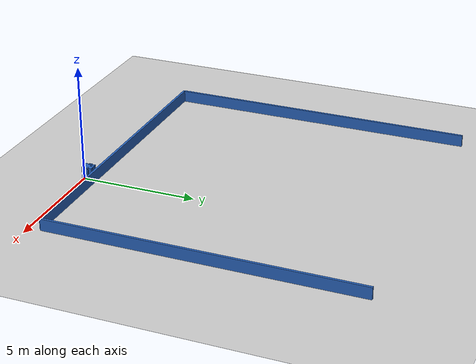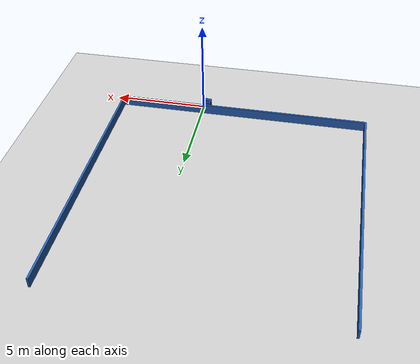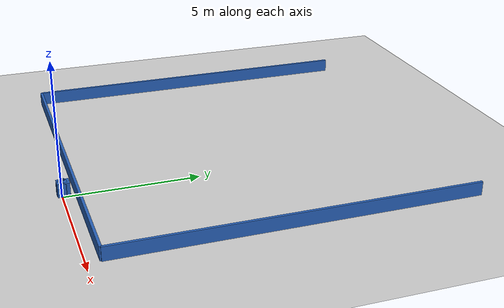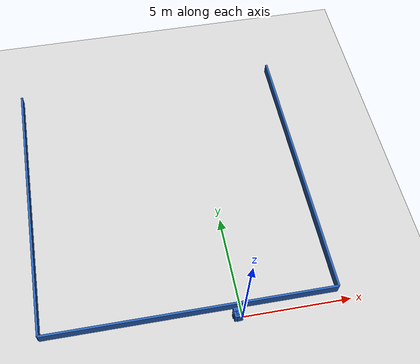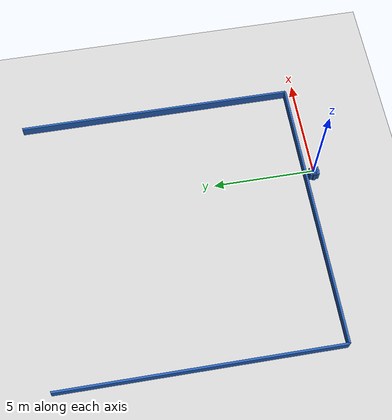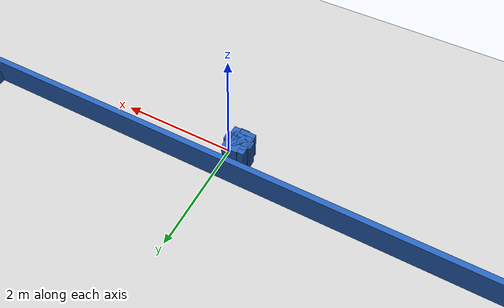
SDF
<?xml version="1.0" ?>
    <sdf version="1.5">
      <world name="default">
        <!-- A global light source -->
        <include>
          <uri>model://sun</uri>
        </include>
        <!-- A ground plane -->
        <include>
          <uri>model://ground_plane</uri>
        </include>

    <model name='libopen_space_final_T2B_64_52'>
      <static>1</static>
      <pose frame=''>-0.225000 0.075000 0.000000 0.000000 0.000000 0.000000</pose>
      <link name='link'>
        <inertial>
          <mass>1</mass>
          <inertia>
            <ixx>0.145833</ixx>
            <ixy>0</ixy>
            <ixz>0</ixz>
            <iyy>0.145833</iyy>
            <iyz>0</iyz>
            <izz>0.125</izz>
          </inertia>
        </inertial>
        <collision name='collision'>
          <geometry>
            <box>
              <size>0.16 0.48 1</size>
            </box>
          </geometry>
          <max_contacts>10</max_contacts>
          <surface>
            <contact>
              <ode/>
            </contact>
            <bounce/>
            <friction>
              <torsional>
                <ode/>
              </torsional>
              <ode/>
            </friction>
          </surface>
        </collision>
        <visual name='visual'>
          <geometry>
            <box>
              <size>0.16 0.48 1</size>
            </box>
          </geometry>
	    <material>
              <ambient>0.152000 0.379000 0.720000 1</ambient>
	      <diffuse>0.152000 0.379000 0.720000 1</diffuse>
          </material>
          <material>
            <script>
              <name>Gazebo/Grey</name>
              <uri>file://media/materials/scripts/gazebo.material</uri>
            </script>
          </material>
        </visual>
        <self_collide>0</self_collide>
        <kinematic>0</kinematic>
        <gravity>1</gravity>
      </link>
      <plugin name='libopen_space_final_T2B_64_52' filename='libopen_space_final_T2B_64_52.so'/>
    </model>

    <model name='libopen_space_final_T2B_79_14'>
      <static>1</static>
      <pose frame=''>-0.225000 0.075000 0.000000 0.000000 0.000000 0.000000</pose>
      <link name='link'>
        <inertial>
          <mass>1</mass>
          <inertia>
            <ixx>0.145833</ixx>
            <ixy>0</ixy>
            <ixz>0</ixz>
            <iyy>0.145833</iyy>
            <iyz>0</iyz>
            <izz>0.125</izz>
          </inertia>
        </inertial>
        <collision name='collision'>
          <geometry>
            <box>
              <size>0.26 0.21 1</size>
            </box>
          </geometry>
          <max_contacts>10</max_contacts>
          <surface>
            <contact>
              <ode/>
            </contact>
            <bounce/>
            <friction>
              <torsional>
                <ode/>
              </torsional>
              <ode/>
            </friction>
          </surface>
        </collision>
        <visual name='visual'>
          <geometry>
            <box>
              <size>0.26 0.21 1</size>
            </box>
          </geometry>
	    <material>
              <ambient>0.152000 0.379000 0.720000 1</ambient>
	      <diffuse>0.152000 0.379000 0.720000 1</diffuse>
          </material>
          <material>
            <script>
              <name>Gazebo/Grey</name>
              <uri>file://media/materials/scripts/gazebo.material</uri>
            </script>
          </material>
        </visual>
        <self_collide>0</self_collide>
        <kinematic>0</kinematic>
        <gravity>1</gravity>
      </link>
      <plugin name='libopen_space_final_T2B_79_14' filename='libopen_space_final_T2B_79_14.so'/>
    </model>

    <model name='libopen_space_final_T2B_52_73'>
      <static>1</static>
      <pose frame=''>-0.225000 0.075000 0.000000 0.000000 0.000000 0.000000</pose>
      <link name='link'>
        <inertial>
          <mass>1</mass>
          <inertia>
            <ixx>0.145833</ixx>
            <ixy>0</ixy>
            <ixz>0</ixz>
            <iyy>0.145833</iyy>
            <iyz>0</iyz>
            <izz>0.125</izz>
          </inertia>
        </inertial>
        <collision name='collision'>
          <geometry>
            <box>
              <size>0.39 0.45 1</size>
            </box>
          </geometry>
          <max_contacts>10</max_contacts>
          <surface>
            <contact>
              <ode/>
            </contact>
            <bounce/>
            <friction>
              <torsional>
                <ode/>
              </torsional>
              <ode/>
            </friction>
          </surface>
        </collision>
        <visual name='visual'>
          <geometry>
            <box>
              <size>0.39 0.45 1</size>
            </box>
          </geometry>
	    <material>
              <ambient>0.152000 0.379000 0.720000 1</ambient>
	      <diffuse>0.152000 0.379000 0.720000 1</diffuse>
          </material>
          <material>
            <script>
              <name>Gazebo/Grey</name>
              <uri>file://media/materials/scripts/gazebo.material</uri>
            </script>
          </material>
        </visual>
        <self_collide>0</self_collide>
        <kinematic>0</kinematic>
        <gravity>1</gravity>
      </link>
      <plugin name='libopen_space_final_T2B_52_73' filename='libopen_space_final_T2B_52_73.so'/>
    </model>

    <model name='libopen_space_final_T2B_80_70'>
      <static>1</static>
      <pose frame=''>-0.225000 0.075000 0.000000 0.000000 0.000000 0.000000</pose>
      <link name='link'>
        <inertial>
          <mass>1</mass>
          <inertia>
            <ixx>0.145833</ixx>
            <ixy>0</ixy>
            <ixz>0</ixz>
            <iyy>0.145833</iyy>
            <iyz>0</iyz>
            <izz>0.125</izz>
          </inertia>
        </inertial>
        <collision name='collision'>
          <geometry>
            <box>
              <size>0.19 0.29 1</size>
            </box>
          </geometry>
          <max_contacts>10</max_contacts>
          <surface>
            <contact>
              <ode/>
            </contact>
            <bounce/>
            <friction>
              <torsional>
                <ode/>
              </torsional>
              <ode/>
            </friction>
          </surface>
        </collision>
        <visual name='visual'>
          <geometry>
            <box>
              <size>0.19 0.29 1</size>
            </box>
          </geometry>
	    <material>
              <ambient>0.152000 0.379000 0.720000 1</ambient>
	      <diffuse>0.152000 0.379000 0.720000 1</diffuse>
          </material>
          <material>
            <script>
              <name>Gazebo/Grey</name>
              <uri>file://media/materials/scripts/gazebo.material</uri>
            </script>
          </material>
        </visual>
        <self_collide>0</self_collide>
        <kinematic>0</kinematic>
        <gravity>1</gravity>
      </link>
      <plugin name='libopen_space_final_T2B_80_70' filename='libopen_space_final_T2B_80_70.so'/>
    </model>

    <model name='libopen_space_final_T2B_125_67'>
      <static>1</static>
      <pose frame=''>-0.225000 0.075000 0.000000 0.000000 0.000000 0.000000</pose>
      <link name='link'>
        <inertial>
          <mass>1</mass>
          <inertia>
            <ixx>0.145833</ixx>
            <ixy>0</ixy>
            <ixz>0</ixz>
            <iyy>0.145833</iyy>
            <iyz>0</iyz>
            <izz>0.125</izz>
          </inertia>
        </inertial>
        <collision name='collision'>
          <geometry>
            <box>
              <size>0.39 0.11 1</size>
            </box>
          </geometry>
          <max_contacts>10</max_contacts>
          <surface>
            <contact>
              <ode/>
            </contact>
            <bounce/>
            <friction>
              <torsional>
                <ode/>
              </torsional>
              <ode/>
            </friction>
          </surface>
        </collision>
        <visual name='visual'>
          <geometry>
            <box>
              <size>0.39 0.11 1</size>
            </box>
          </geometry>
	    <material>
              <ambient>0.152000 0.379000 0.720000 1</ambient>
	      <diffuse>0.152000 0.379000 0.720000 1</diffuse>
          </material>
          <material>
            <script>
              <name>Gazebo/Grey</name>
              <uri>file://media/materials/scripts/gazebo.material</uri>
            </script>
          </material>
        </visual>
        <self_collide>0</self_collide>
        <kinematic>0</kinematic>
        <gravity>1</gravity>
      </link>
      <plugin name='libopen_space_final_T2B_125_67' filename='libopen_space_final_T2B_125_67.so'/>
    </model>

    <model name='libopen_space_final_T2B_91_57'>
      <static>1</static>
      <pose frame=''>-0.225000 0.075000 0.000000 0.000000 0.000000 0.000000</pose>
      <link name='link'>
        <inertial>
          <mass>1</mass>
          <inertia>
            <ixx>0.145833</ixx>
            <ixy>0</ixy>
            <ixz>0</ixz>
            <iyy>0.145833</iyy>
            <iyz>0</iyz>
            <izz>0.125</izz>
          </inertia>
        </inertial>
        <collision name='collision'>
          <geometry>
            <box>
              <size>0.34 0.28 1</size>
            </box>
          </geometry>
          <max_contacts>10</max_contacts>
          <surface>
            <contact>
              <ode/>
            </contact>
            <bounce/>
            <friction>
              <torsional>
                <ode/>
              </torsional>
              <ode/>
            </friction>
          </surface>
        </collision>
        <visual name='visual'>
          <geometry>
            <box>
              <size>0.34 0.28 1</size>
            </box>
          </geometry>
	    <material>
              <ambient>0.152000 0.379000 0.720000 1</ambient>
	      <diffuse>0.152000 0.379000 0.720000 1</diffuse>
          </material>
          <material>
            <script>
              <name>Gazebo/Grey</name>
              <uri>file://media/materials/scripts/gazebo.material</uri>
            </script>
          </material>
        </visual>
        <self_collide>0</self_collide>
        <kinematic>0</kinematic>
        <gravity>1</gravity>
      </link>
      <plugin name='libopen_space_final_T2B_91_57' filename='libopen_space_final_T2B_91_57.so'/>
    </model>

    <model name='libopen_space_final_T2B_103_35'>
      <static>1</static>
      <pose frame=''>-0.225000 0.075000 0.000000 0.000000 0.000000 0.000000</pose>
      <link name='link'>
        <inertial>
          <mass>1</mass>
          <inertia>
            <ixx>0.145833</ixx>
            <ixy>0</ixy>
            <ixz>0</ixz>
            <iyy>0.145833</iyy>
            <iyz>0</iyz>
            <izz>0.125</izz>
          </inertia>
        </inertial>
        <collision name='collision'>
          <geometry>
            <box>
              <size>0.19 0.28 1</size>
            </box>
          </geometry>
          <max_contacts>10</max_contacts>
          <surface>
            <contact>
              <ode/>
            </contact>
            <bounce/>
            <friction>
              <torsional>
                <ode/>
              </torsional>
              <ode/>
            </friction>
          </surface>
        </collision>
        <visual name='visual'>
          <geometry>
            <box>
              <size>0.19 0.28 1</size>
            </box>
          </geometry>
	    <material>
              <ambient>0.152000 0.379000 0.720000 1</ambient>
	      <diffuse>0.152000 0.379000 0.720000 1</diffuse>
          </material>
          <material>
            <script>
              <name>Gazebo/Grey</name>
              <uri>file://media/materials/scripts/gazebo.material</uri>
            </script>
          </material>
        </visual>
        <self_collide>0</self_collide>
        <kinematic>0</kinematic>
        <gravity>1</gravity>
      </link>
      <plugin name='libopen_space_final_T2B_103_35' filename='libopen_space_final_T2B_103_35.so'/>
    </model>

    <model name='libopen_space_final_T2B_81_4'>
      <static>1</static>
      <pose frame=''>-0.225000 0.075000 0.000000 0.000000 0.000000 0.000000</pose>
      <link name='link'>
        <inertial>
          <mass>1</mass>
          <inertia>
            <ixx>0.145833</ixx>
            <ixy>0</ixy>
            <ixz>0</ixz>
            <iyy>0.145833</iyy>
            <iyz>0</iyz>
            <izz>0.125</izz>
          </inertia>
        </inertial>
        <collision name='collision'>
          <geometry>
            <box>
              <size>0.42 0.19 1</size>
            </box>
          </geometry>
          <max_contacts>10</max_contacts>
          <surface>
            <contact>
              <ode/>
            </contact>
            <bounce/>
            <friction>
              <torsional>
                <ode/>
              </torsional>
              <ode/>
            </friction>
          </surface>
        </collision>
        <visual name='visual'>
          <geometry>
            <box>
              <size>0.42 0.19 1</size>
            </box>
          </geometry>
	    <material>
              <ambient>0.152000 0.379000 0.720000 1</ambient>
	      <diffuse>0.152000 0.379000 0.720000 1</diffuse>
          </material>
          <material>
            <script>
              <name>Gazebo/Grey</name>
              <uri>file://media/materials/scripts/gazebo.material</uri>
            </script>
          </material>
        </visual>
        <self_collide>0</self_collide>
        <kinematic>0</kinematic>
        <gravity>1</gravity>
      </link>
      <plugin name='libopen_space_final_T2B_81_4' filename='libopen_space_final_T2B_81_4.so'/>
    </model>

    <model name='libopen_space_final_T2B_79_93'>
      <static>1</static>
      <pose frame=''>-0.225000 0.075000 0.000000 0.000000 0.000000 0.000000</pose>
      <link name='link'>
        <inertial>
          <mass>1</mass>
          <inertia>
            <ixx>0.145833</ixx>
            <ixy>0</ixy>
            <ixz>0</ixz>
            <iyy>0.145833</iyy>
            <iyz>0</iyz>
            <izz>0.125</izz>
          </inertia>
        </inertial>
        <collision name='collision'>
          <geometry>
            <box>
              <size>0.48 0.15 1</size>
            </box>
          </geometry>
          <max_contacts>10</max_contacts>
          <surface>
            <contact>
              <ode/>
            </contact>
            <bounce/>
            <friction>
              <torsional>
                <ode/>
              </torsional>
              <ode/>
            </friction>
          </surface>
        </collision>
        <visual name='visual'>
          <geometry>
            <box>
              <size>0.48 0.15 1</size>
            </box>
          </geometry>
	    <material>
              <ambient>0.152000 0.379000 0.720000 1</ambient>
	      <diffuse>0.152000 0.379000 0.720000 1</diffuse>
          </material>
          <material>
            <script>
              <name>Gazebo/Grey</name>
              <uri>file://media/materials/scripts/gazebo.material</uri>
            </script>
          </material>
        </visual>
        <self_collide>0</self_collide>
        <kinematic>0</kinematic>
        <gravity>1</gravity>
      </link>
      <plugin name='libopen_space_final_T2B_79_93' filename='libopen_space_final_T2B_79_93.so'/>
    </model>

    <model name='libopen_space_final_T2B_129_11'>
      <static>1</static>
      <pose frame=''>-0.225000 0.075000 0.000000 0.000000 0.000000 0.000000</pose>
      <link name='link'>
        <inertial>
          <mass>1</mass>
          <inertia>
            <ixx>0.145833</ixx>
            <ixy>0</ixy>
            <ixz>0</ixz>
            <iyy>0.145833</iyy>
            <iyz>0</iyz>
            <izz>0.125</izz>
          </inertia>
        </inertial>
        <collision name='collision'>
          <geometry>
            <box>
              <size>0.36 0.16 1</size>
            </box>
          </geometry>
          <max_contacts>10</max_contacts>
          <surface>
            <contact>
              <ode/>
            </contact>
            <bounce/>
            <friction>
              <torsional>
                <ode/>
              </torsional>
              <ode/>
            </friction>
          </surface>
        </collision>
        <visual name='visual'>
          <geometry>
            <box>
              <size>0.36 0.16 1</size>
            </box>
          </geometry>
	    <material>
              <ambient>0.152000 0.379000 0.720000 1</ambient>
	      <diffuse>0.152000 0.379000 0.720000 1</diffuse>
          </material>
          <material>
            <script>
              <name>Gazebo/Grey</name>
              <uri>file://media/materials/scripts/gazebo.material</uri>
            </script>
          </material>
        </visual>
        <self_collide>0</self_collide>
        <kinematic>0</kinematic>
        <gravity>1</gravity>
      </link>
      <plugin name='libopen_space_final_T2B_129_11' filename='libopen_space_final_T2B_129_11.so'/>
    </model>

    <model name='libopen_space_final_T2B_96_0'>
      <static>1</static>
      <pose frame=''>-0.225000 0.075000 0.000000 0.000000 0.000000 0.000000</pose>
      <link name='link'>
        <inertial>
          <mass>1</mass>
          <inertia>
            <ixx>0.145833</ixx>
            <ixy>0</ixy>
            <ixz>0</ixz>
            <iyy>0.145833</iyy>
            <iyz>0</iyz>
            <izz>0.125</izz>
          </inertia>
        </inertial>
        <collision name='collision'>
          <geometry>
            <box>
              <size>0.29 0.14 1</size>
            </box>
          </geometry>
          <max_contacts>10</max_contacts>
          <surface>
            <contact>
              <ode/>
            </contact>
            <bounce/>
            <friction>
              <torsional>
                <ode/>
              </torsional>
              <ode/>
            </friction>
          </surface>
        </collision>
        <visual name='visual'>
          <geometry>
            <box>
              <size>0.29 0.14 1</size>
            </box>
          </geometry>
	    <material>
              <ambient>0.152000 0.379000 0.720000 1</ambient>
	      <diffuse>0.152000 0.379000 0.720000 1</diffuse>
          </material>
          <material>
            <script>
              <name>Gazebo/Grey</name>
              <uri>file://media/materials/scripts/gazebo.material</uri>
            </script>
          </material>
        </visual>
        <self_collide>0</self_collide>
        <kinematic>0</kinematic>
        <gravity>1</gravity>
      </link>
      <plugin name='libopen_space_final_T2B_96_0' filename='libopen_space_final_T2B_96_0.so'/>
    </model>

    <model name='libopen_space_final_T2B_83_23'>
      <static>1</static>
      <pose frame=''>-0.225000 0.075000 0.000000 0.000000 0.000000 0.000000</pose>
      <link name='link'>
        <inertial>
          <mass>1</mass>
          <inertia>
            <ixx>0.145833</ixx>
            <ixy>0</ixy>
            <ixz>0</ixz>
            <iyy>0.145833</iyy>
            <iyz>0</iyz>
            <izz>0.125</izz>
          </inertia>
        </inertial>
        <collision name='collision'>
          <geometry>
            <box>
              <size>0.17 0.16 1</size>
            </box>
          </geometry>
          <max_contacts>10</max_contacts>
          <surface>
            <contact>
              <ode/>
            </contact>
            <bounce/>
            <friction>
              <torsional>
                <ode/>
              </torsional>
              <ode/>
            </friction>
          </surface>
        </collision>
        <visual name='visual'>
          <geometry>
            <box>
              <size>0.17 0.16 1</size>
            </box>
          </geometry>
	    <material>
              <ambient>0.152000 0.379000 0.720000 1</ambient>
	      <diffuse>0.152000 0.379000 0.720000 1</diffuse>
          </material>
          <material>
            <script>
              <name>Gazebo/Grey</name>
              <uri>file://media/materials/scripts/gazebo.material</uri>
            </script>
          </material>
        </visual>
        <self_collide>0</self_collide>
        <kinematic>0</kinematic>
        <gravity>1</gravity>
      </link>
      <plugin name='libopen_space_final_T2B_83_23' filename='libopen_space_final_T2B_83_23.so'/>
    </model>

    <model name='libopen_space_final_T2B_125_59'>
      <static>1</static>
      <pose frame=''>-0.225000 0.075000 0.000000 0.000000 0.000000 0.000000</pose>
      <link name='link'>
        <inertial>
          <mass>1</mass>
          <inertia>
            <ixx>0.145833</ixx>
            <ixy>0</ixy>
            <ixz>0</ixz>
            <iyy>0.145833</iyy>
            <iyz>0</iyz>
            <izz>0.125</izz>
          </inertia>
        </inertial>
        <collision name='collision'>
          <geometry>
            <box>
              <size>0.13 0.25 1</size>
            </box>
          </geometry>
          <max_contacts>10</max_contacts>
          <surface>
            <contact>
              <ode/>
            </contact>
            <bounce/>
            <friction>
              <torsional>
                <ode/>
              </torsional>
              <ode/>
            </friction>
          </surface>
        </collision>
        <visual name='visual'>
          <geometry>
            <box>
              <size>0.13 0.25 1</size>
            </box>
          </geometry>
	    <material>
              <ambient>0.152000 0.379000 0.720000 1</ambient>
	      <diffuse>0.152000 0.379000 0.720000 1</diffuse>
          </material>
          <material>
            <script>
              <name>Gazebo/Grey</name>
              <uri>file://media/materials/scripts/gazebo.material</uri>
            </script>
          </material>
        </visual>
        <self_collide>0</self_collide>
        <kinematic>0</kinematic>
        <gravity>1</gravity>
      </link>
      <plugin name='libopen_space_final_T2B_125_59' filename='libopen_space_final_T2B_125_59.so'/>
    </model>

        <model name='bottom_wall'>
          <static>1</static>
          <pose frame=''>-2.25 0.5 0.000000 0.000000 0.000000 1.57079632</pose>
          <link name='link'>
            <inertial>
            <mass>1</mass>
            <inertia>
              <ixx>0.145833</ixx>
              <ixy>0</ixy>
              <ixz>0</ixz>
              <iyy>0.145833</iyy>
              <iyz>0</iyz>
              <izz>0.125</izz>
            </inertia>
            </inertial>
            <collision name='collision'>
            <geometry>
              <box>
              <size>0.1 13.5 1</size>
              </box>
            </geometry>
            <max_contacts>10</max_contacts>
            <surface>
              <contact>
              <ode/>
              </contact>
              <bounce/>
              <friction>
              <torsional>
                <ode/>
              </torsional>
              <ode/>
              </friction>
            </surface>
            </collision>
            <visual name='visual'>
            <geometry>
              <box>
              <size>0.1 13.5 1</size>
              </box>
            </geometry>
            <material>
              <ambient>0.152000 0.379000 0.720000 1</ambient>
            <diffuse>0.152000 0.379000 0.720000 1</diffuse>
            </material>
            <material>
              <script>
              <name>Gazebo/Grey</name>
              <uri>file://media/materials/scripts/gazebo.material</uri>
              </script>
            </material>
            </visual>
            <self_collide>0</self_collide>
            <kinematic>0</kinematic>
            <gravity>1</gravity>
          </link>
        </model>

        <model name='left_wall'>
          <static>1</static>
          <pose frame=''>-9 7.25 0.000000 0.000000 0.000000 0.000000</pose>
          <link name='link'>
            <inertial>
            <mass>1</mass>
            <inertia>
              <ixx>0.145833</ixx>
              <ixy>0</ixy>
              <ixz>0</ixz>
              <iyy>0.145833</iyy>
              <iyz>0</iyz>
              <izz>0.125</izz>
            </inertia>
            </inertial>
            <collision name='collision'>
            <geometry>
              <box>
              <size>0.1 13.5 1</size>
              </box>
            </geometry>
            <max_contacts>10</max_contacts>
            <surface>
              <contact>
              <ode/>
              </contact>
              <bounce/>
              <friction>
              <torsional>
                <ode/>
              </torsional>
              <ode/>
              </friction>
            </surface>
            </collision>
            <visual name='visual'>
            <geometry>
              <box>
              <size>0.1 13.5 1</size>
              </box>
            </geometry>
            <material>
              <ambient>0.152000 0.379000 0.720000 1</ambient>
            <diffuse>0.152000 0.379000 0.720000 1</diffuse>
            </material>
            <material>
              <script>
              <name>Gazebo/Grey</name>
              <uri>file://media/materials/scripts/gazebo.material</uri>
              </script>
            </material>
            </visual>
            <self_collide>0</self_collide>
            <kinematic>0</kinematic>
            <gravity>1</gravity>
          </link>
        </model>

        <model name='right_wall'>
          <static>1</static>
          <pose frame=''>4.5 7.25 0.000000 0.000000 0.000000 0.000000</pose>
          <link name='link'>
            <inertial>
            <mass>1</mass>
            <inertia>
              <ixx>0.145833</ixx>
              <ixy>0</ixy>
              <ixz>0</ixz>
              <iyy>0.145833</iyy>
              <iyz>0</iyz>
              <izz>0.125</izz>
            </inertia>
            </inertial>
            <collision name='collision'>
            <geometry>
              <box>
              <size>0.1 13.5 1</size>
              </box>
            </geometry>
            <max_contacts>10</max_contacts>
            <surface>
              <contact>
              <ode/>
              </contact>
              <bounce/>
              <friction>
              <torsional>
                <ode/>
              </torsional>
              <ode/>
              </friction>
            </surface>
            </collision>
            <visual name='visual'>
            <geometry>
              <box>
              <size>0.1 13.5 1</size>
              </box>
            </geometry>
            <material>
              <ambient>0.152000 0.379000 0.720000 1</ambient>
            <diffuse>0.152000 0.379000 0.720000 1</diffuse>
            </material>
            <material>
              <script>
              <name>Gazebo/Grey</name>
              <uri>file://media/materials/scripts/gazebo.material</uri>
              </script>
            </material>
            </visual>
            <self_collide>0</self_collide>
            <kinematic>0</kinematic>
            <gravity>1</gravity>
          </link>
        </model>

      </world>
    </sdf>"
